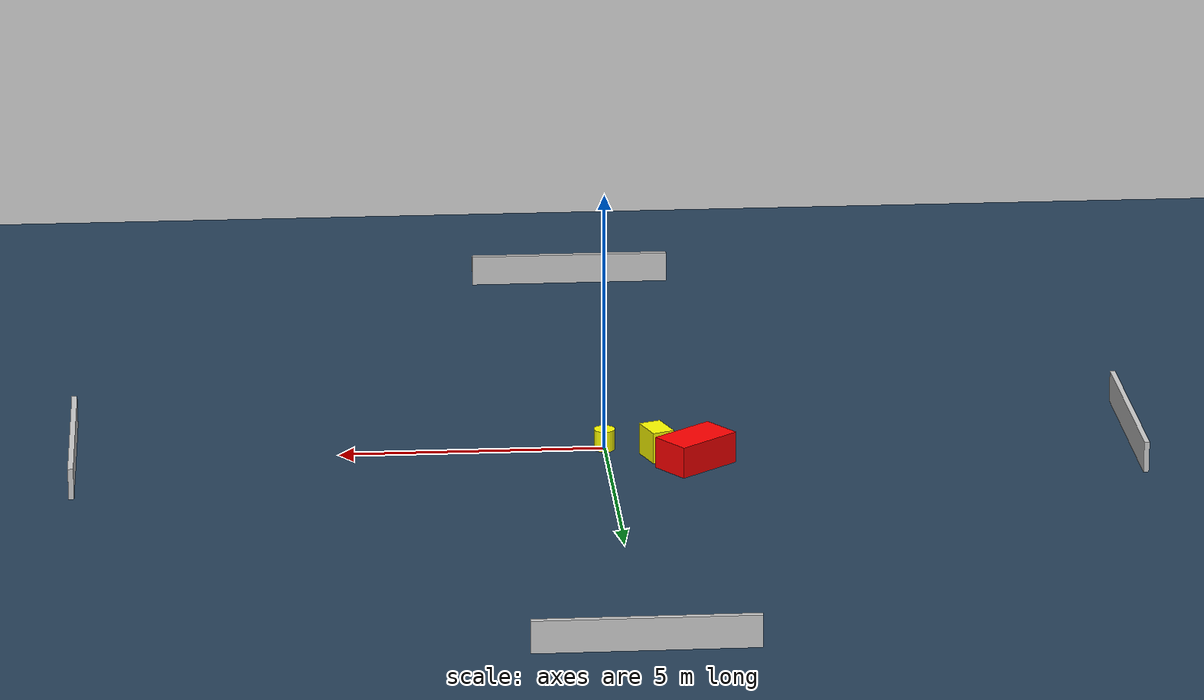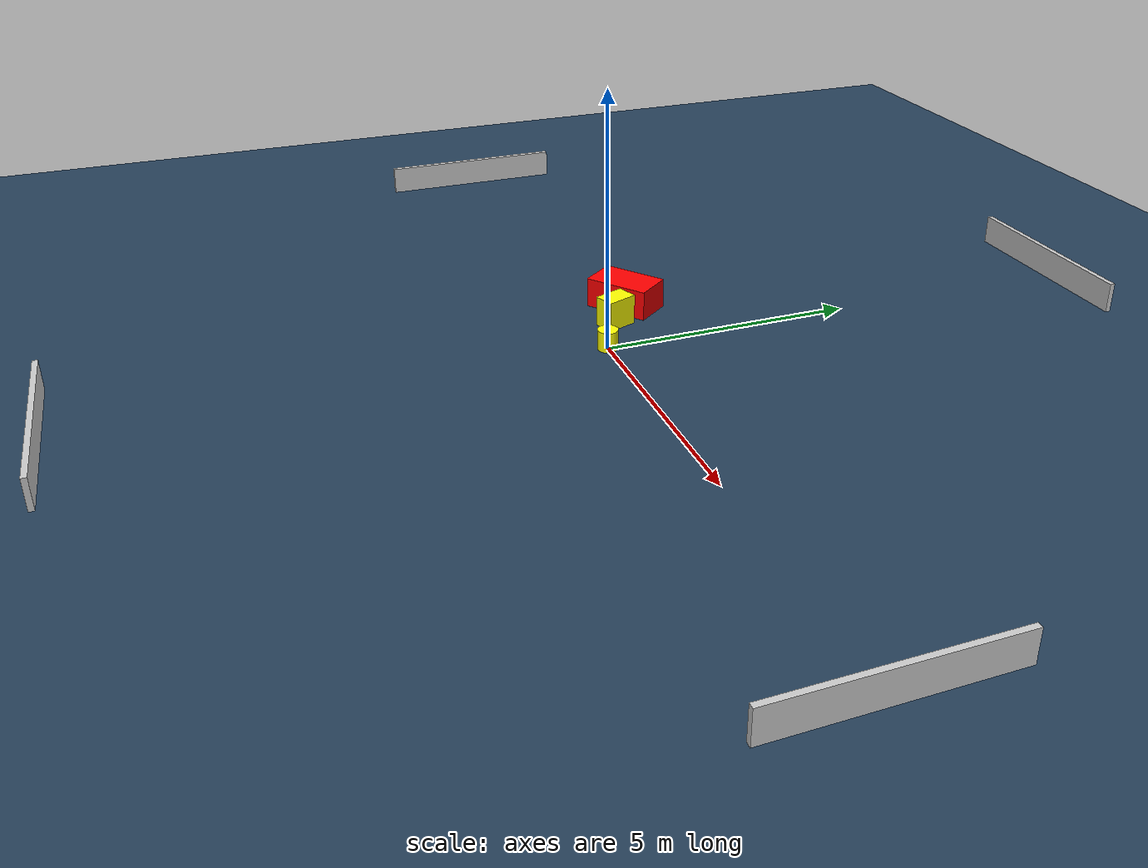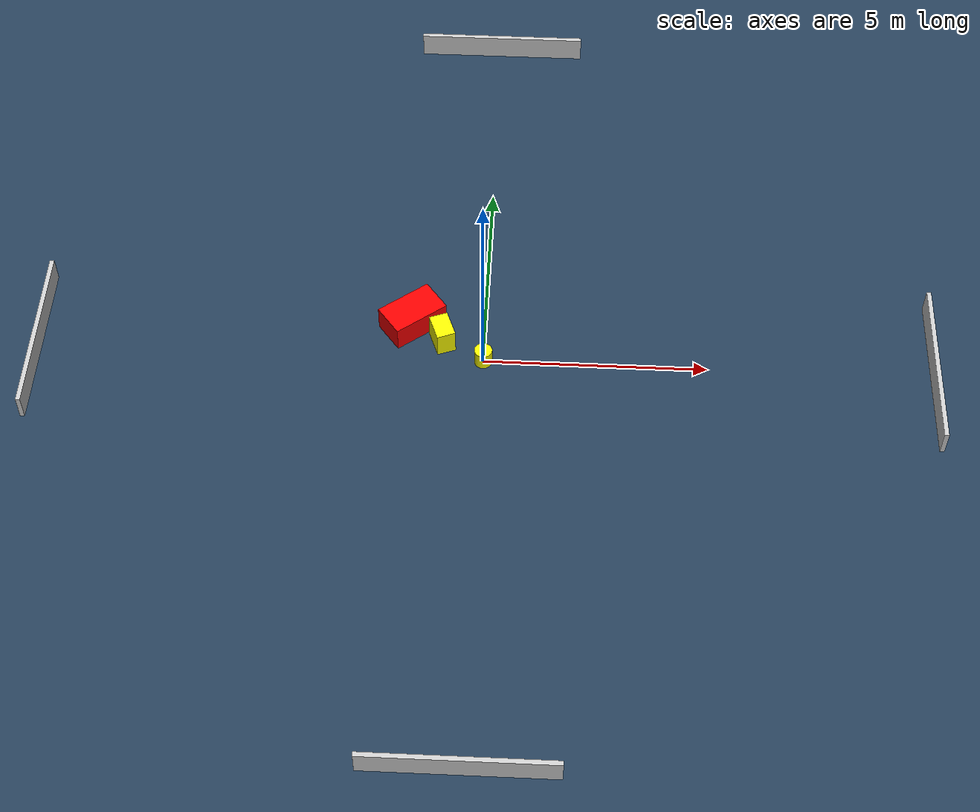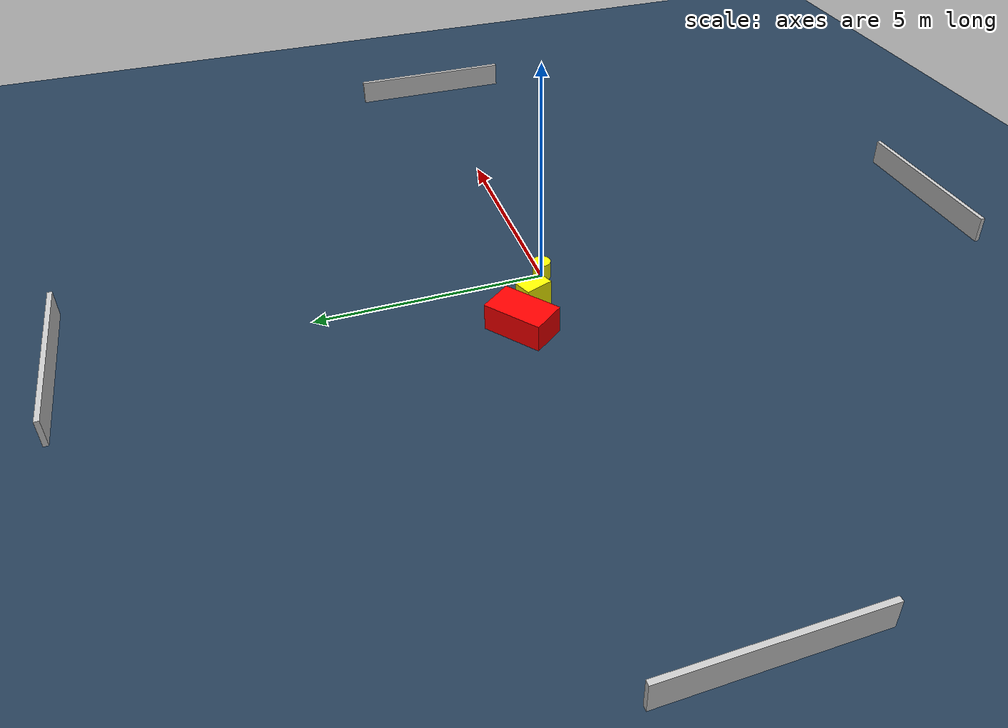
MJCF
<?xml version="1.0" ?>
<mujoco model="generated_environment">
  <option timestep="0.01" integrator="RK4" cone="elliptic"/>
  <default>
    <geom density="1"/>
  </default>
  <asset>
    <texture builtin="gradient" height="3072" name="skybox" rgb1="0.3 0.5 0.7" rgb2="0 0 0" type="skybox" width="512"/>
    <texture builtin="checker" height="300" name="groundplane" rgb1="0.2 0.3 0.4" rgb2="0.1 0.2 0.3" type="2d" width="300"/>
    <material name="groundplane" reflectance="0.2" texrepeat="5 5" texture="groundplane"/>
  </asset>
  <worldbody>
    <light dir="0 0 -1" directional="true" pos="0 0 1.5"/>
    <geom condim="3" friction="0.5 0.005 0.001" material="groundplane" name="floor" pos="0 0 0" size="0 0 0.05" type="plane"/>
    <body name="walls">
      <geom name="wall_1" condim="4" pos="-10.0 0.0 0.3" rgba="0.800000011920929 0.800000011920929 0.800000011920929 1.0" size="0.05 2.0 0.3" type="box"/>
      <geom name="wall_2" condim="4" pos="10.0 0.0 0.3" rgba="0.800000011920929 0.800000011920929 0.800000011920929 1.0" size="0.05 2.0 0.3" type="box"/>
      <geom name="wall_3" condim="4" pos="0.0 -10.0 0.3" rgba="0.800000011920929 0.800000011920929 0.800000011920929 1.0" size="2.0 0.05 0.3" type="box"/>
      <geom name="wall_4" condim="4" pos="0.0 10.0 0.3" rgba="0.800000011920929 0.800000011920929 0.800000011920929 1.0" size="2.0 0.05 0.3" type="box"/>
    </body>
    <body name="robot">
      <joint name="joint_x" type="slide" pos="0 0 0" axis="1 0 0"/>
      <joint name="joint_y" type="slide" pos="0 0 0" axis="0 1 0"/>
      <geom name="robot" type="cylinder" pos="0.0 0.0 0.2" size="0.2 0.2 0.0" mass="5.0" friction="1.0 0.005 0.0001" condim="4" rgba="1.0 1.0 0.0 1.0"/>
    </body>
    <body name="obstacle_1_movable">
      <geom name="obstacle_1_movable" condim="4" pos="-0.9433527322689222 0.5104723671702924 0.3" euler="0 0 290.701751622349" friction="0.0 0.005 0.001" rgba="1.0 1.0 0.0 1.0" size="0.3106720559076118 0.21190325140078517 0.3" type="box" mass="0.1"/>
      <joint type="free"/>
    </body>
    <body name="obstacle_2_static">
      <geom name="obstacle_2_static" condim="4" pos="-1.6440860754054332 0.9888275244705581 0.3" euler="0 0 217.55128313452838" friction="0.0 0.005 0.001" rgba="1.0 0.0 0.0 1.0" size="0.6614996151817252 0.3920165597139502 0.3" type="box"/>
    </body>
  </worldbody>
  <actuator>
    <motor name="actuator_x" joint="joint_x" gear="1" ctrlrange="-1 1"/>
    <motor name="actuator_y" joint="joint_y" gear="1" ctrlrange="-1 1"/>
  </actuator>
</mujoco>
